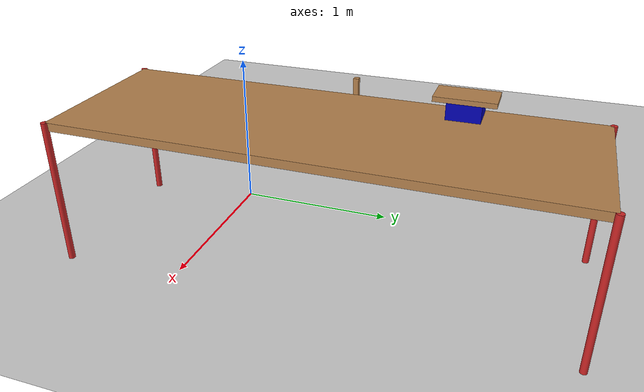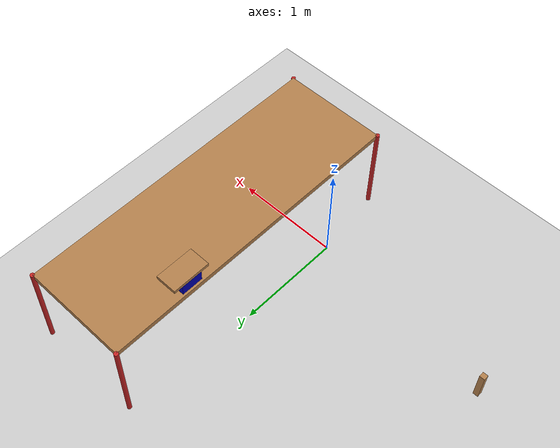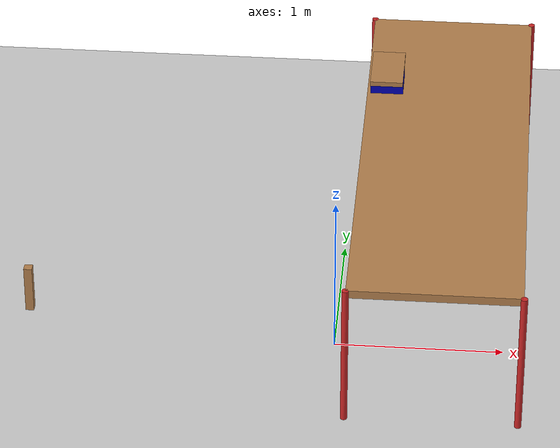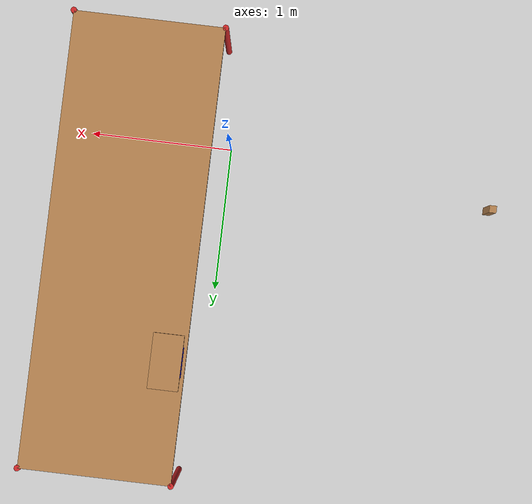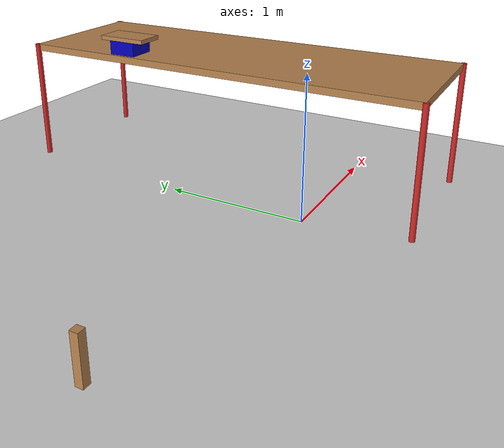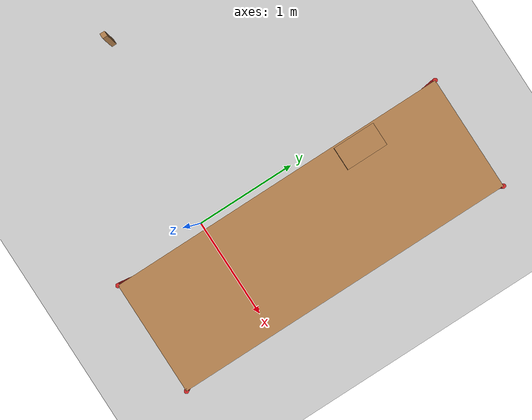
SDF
<sdf version="1.6">
 <world name="default">
  <light name="sun" type="directional">
   <pose>0 0 10 0 -0 0</pose>
   <diffuse>0.8 0.8 0.8 1</diffuse>
   <specular>0.1 0.1 0.1 1</specular>
   <attenuation>
    <range>1000</range>
    <constant>0.9</constant>
    <linear>0.01</linear>
    <quadratic>0.001</quadratic>
   </attenuation>
   <direction>-0.5 0.5 -1</direction>
  </light>
  <model name="ground_plane">
   <static>1</static>
   <link name="link">
    <collision name="collision">
     <geometry><plane><normal>0 0 1</normal><size>100 100</size></plane></geometry>
     <surface><friction><ode><mu>100</mu><mu2>50</mu2></ode></friction></surface>
    </collision>
    <visual name="visual">
     <cast_shadows>0</cast_shadows>
     <geometry><plane><normal>0 0 1</normal><size>100 100</size></plane></geometry>
     <material>
      <script><uri>file://media/materials/scripts/gazebo.material</uri><name>Gazebo/Grey</name></script>
     </material>
    </visual>
   </link>
  </model>
  <gravity>0 0 -9.8</gravity>
  <magnetic_field>6e-06 2.3e-05 -4.2e-05</magnetic_field>
  <atmosphere type="adiabatic"/>
  <physics name="default_physics" default="0" type="ode">
   <max_step_size>0.001</max_step_size>
   <real_time_factor>1</real_time_factor>
   <real_time_update_rate>1000</real_time_update_rate>
  </physics>
  <scene><ambient>0.4 0.4 0.4 1</ambient><background>0.7 0.7 0.7 1</background><shadows>1</shadows></scene>
  <spherical_coordinates>
   <surface_model>EARTH_WGS84</surface_model>
   <latitude_deg>0</latitude_deg>
   <longitude_deg>0</longitude_deg>
   <elevation>0</elevation>
   <heading_deg>0</heading_deg>
  </spherical_coordinates>
  <model name="table_model">
   <link name="table_top_link">
    <inertial>
     <pose>0.8 0 0.535 0 -0 0</pose>
     <mass>50</mass>
     <inertia><ixx>92.845</ixx><ixy>0</ixy><ixz>0</ixz><iyy>12.845</iyy><iyz>0</iyz><izz>101.04</izz></inertia>
    </inertial>
    <collision name="table_top_link_collision">
     <pose>0.8 0 0.875 0 -0 0</pose>
     <geometry><box><size>1 3 0.05</size></box></geometry>
     <surface>
      <contact><ode><kp>1e+06</kp><kd>1</kd></ode></contact>
      <friction><ode><mu>50</mu><mu2>50</mu2></ode></friction>
     </surface>
    </collision>
    <collision name="table_top_link_fixed_joint_lump__leg1_link_collision_1">
     <pose>1.3 1.5 0.45 0 -0 0</pose>
     <geometry><cylinder><length>0.9</length><radius>0.02</radius></cylinder></geometry>
     <surface>
      <contact><ode><kp>1e+07</kp><kd>1</kd></ode></contact>
      <friction><ode><mu>1000</mu><mu2>1000</mu2></ode></friction>
     </surface>
    </collision>
    <collision name="table_top_link_fixed_joint_lump__leg2_link_collision_2">
     <pose>0.3 1.5 0.45 0 -0 0</pose>
     <geometry><cylinder><length>0.9</length><radius>0.02</radius></cylinder></geometry>
     <surface>
      <contact><ode><kp>1e+07</kp><kd>1</kd></ode></contact>
      <friction><ode><mu>1000</mu><mu2>1000</mu2></ode></friction>
     </surface>
    </collision>
    <collision name="table_top_link_fixed_joint_lump__leg3_link_collision_3">
     <pose>1.3 -1.5 0.45 0 -0 0</pose>
     <geometry><cylinder><length>0.9</length><radius>0.02</radius></cylinder></geometry>
     <surface>
      <contact><ode><kp>1e+07</kp><kd>1</kd></ode></contact>
      <friction><ode><mu>1000</mu><mu2>1000</mu2></ode></friction>
     </surface>
    </collision>
    <collision name="table_top_link_fixed_joint_lump__leg4_link_collision_4">
     <pose>0.3 -1.5 0.45 0 -0 0</pose>
     <geometry><cylinder><length>0.9</length><radius>0.02</radius></cylinder></geometry>
     <surface>
      <contact><ode><kp>1e+07</kp><kd>1</kd></ode></contact>
      <friction><ode><mu>1000</mu><mu2>1000</mu2></ode></friction>
     </surface>
    </collision>
    <visual name="table_top_link_visual">
     <pose>0.8 0 0.875 0 -0 0</pose>
     <geometry><box><size>1 3 0.05</size></box></geometry>
     <material>
      <script><name>Gazebo/Wood</name><uri>file://media/materials/scripts/gazebo.material</uri></script>
     </material>
    </visual>
    <visual name="table_top_link_fixed_joint_lump__leg1_link_visual_1">
     <pose>1.3 1.5 0.45 0 -0 0</pose>
     <geometry><cylinder><length>0.9</length><radius>0.02</radius></cylinder></geometry>
     <material>
      <script><name>Gazebo/Red</name><uri>file://media/materials/scripts/gazebo.material</uri></script>
     </material>
    </visual>
    <visual name="table_top_link_fixed_joint_lump__leg2_link_visual_2">
     <pose>0.3 1.5 0.45 0 -0 0</pose>
     <geometry><cylinder><length>0.9</length><radius>0.02</radius></cylinder></geometry>
     <material>
      <script><name>Gazebo/Red</name><uri>file://media/materials/scripts/gazebo.material</uri></script>
     </material>
    </visual>
    <visual name="table_top_link_fixed_joint_lump__leg3_link_visual_3">
     <pose>1.3 -1.5 0.45 0 -0 0</pose>
     <geometry><cylinder><length>0.9</length><radius>0.02</radius></cylinder></geometry>
     <material>
      <script><name>Gazebo/Red</name><uri>file://media/materials/scripts/gazebo.material</uri></script>
     </material>
    </visual>
    <visual name="table_top_link_fixed_joint_lump__leg4_link_visual_4">
     <pose>0.3 -1.5 0.45 0 -0 0</pose>
     <geometry><cylinder><length>0.9</length><radius>0.02</radius></cylinder></geometry>
     <material>
      <script><name>Gazebo/Red</name><uri>file://media/materials/scripts/gazebo.material</uri></script>
     </material>
    </visual>
    <self_collide>1</self_collide>
   </link>
   <static>1</static>
   <pose>-0.2 0.8 0 0 -0 0</pose>
  </model>
  <model name="box1">
   <link name="link">
    <inertial>
     <mass>0.3</mass>
     <inertia><ixx>0.066667</ixx><ixy>0</ixy><ixz>0</ixz><iyy>0.136667</iyy><iyz>0</iyz><izz>0.21</izz></inertia>
    </inertial>
    <visual name="visual">
     <geometry><box><size>0.05 0.05 0.3</size></box></geometry>
     <material>
      <script><name>Gazebo/Wood</name><uri>file://media/materials/scripts/gazebo.material</uri></script>
      <ambient>0.3 0.3 0.3 1</ambient>
      <diffuse>0.7 0.7 0.7 1</diffuse>
      <specular>0.01 0.01 0.01 1</specular>
      <emissive>0.7 0.5 0 1</emissive>
      <shader type="vertex"><normal_map>__default__</normal_map></shader>
     </material>
    </visual>
    <collision name="collision">
     <geometry><box><size>0.05 0.05 0.3</size></box></geometry>
     <surface>
      <friction>
       <ode><mu>1</mu><mu2>1</mu2><fdir1>0 0 0</fdir1><slip1>0</slip1><slip2>0</slip2></ode>
       <torsional>
        <coefficient>1</coefficient>
        <patch_radius>0</patch_radius>
        <surface_radius>0</surface_radius>
        <use_patch_radius>1</use_patch_radius>
        <ode><slip>0</slip></ode>
       </torsional>
      </friction>
      <bounce><restitution_coefficient>0</restitution_coefficient><threshold>1e+06</threshold></bounce>
      <contact>
       <collide_without_contact>0</collide_without_contact>
       <collide_without_contact_bitmask>1</collide_without_contact_bitmask>
       <collide_bitmask>1</collide_bitmask>
       <ode>
        <soft_cfm>0</soft_cfm>
        <soft_erp>0.2</soft_erp>
        <kp>1e+13</kp>
        <kd>1</kd>
        <max_vel>0.01</max_vel>
        <min_depth>0</min_depth>
       </ode>
       <bullet>
        <split_impulse>1</split_impulse>
        <split_impulse_penetration_threshold>-0.01</split_impulse_penetration_threshold>
        <soft_cfm>0</soft_cfm>
        <soft_erp>0.2</soft_erp>
        <kp>1e+13</kp>
        <kd>1</kd>
       </bullet>
      </contact>
     </surface>
    </collision>
   </link>
   <static>0</static>
   <pose>-1.86011 0.22333 0.15 -5e-06 3e-06 -0.000295</pose>
  </model>
  <model name="box2_0_0">
   <link name="link">
    <inertial>
     <mass>2</mass>
     <inertia>
      <ixx>0.0166667</ixx>
      <ixy>0</ixy>
      <ixz>0</ixz>
      <iyy>0.0166667</iyy>
      <iyz>0</iyz>
      <izz>0.0166667</izz>
     </inertia>
    </inertial>
    <visual name="visual">
     <geometry><box><size>0.2 0.2 0.1</size></box></geometry>
     <material>
      <script><name>Gazebo/Grey</name><uri>file://media/materials/scripts/gazebo.material</uri></script>
      <ambient>0.3 0.3 0.9 1</ambient>
      <diffuse>0 0 0.7 1</diffuse>
      <specular>0.01 0.01 0.8 1</specular>
      <emissive>0 0 0.5 1</emissive>
      <shader type="vertex"><normal_map>__default__</normal_map></shader>
     </material>
    </visual>
    <collision name="collision">
     <geometry><box><size>0.2 0.2 0.1</size></box></geometry>
     <surface>
      <friction>
       <ode><mu>1</mu><mu2>1</mu2><fdir1>0 0 0</fdir1><slip1>0</slip1><slip2>0</slip2></ode>
       <torsional>
        <coefficient>1</coefficient>
        <patch_radius>0</patch_radius>
        <surface_radius>0</surface_radius>
        <use_patch_radius>1</use_patch_radius>
        <ode><slip>0</slip></ode>
       </torsional>
      </friction>
      <bounce><restitution_coefficient>0</restitution_coefficient><threshold>1e+06</threshold></bounce>
      <contact>
       <collide_without_contact>0</collide_without_contact>
       <collide_without_contact_bitmask>1</collide_without_contact_bitmask>
       <collide_bitmask>1</collide_bitmask>
       <ode>
        <soft_cfm>0</soft_cfm>
        <soft_erp>0.2</soft_erp>
        <kp>1e+13</kp>
        <kd>1</kd>
        <max_vel>0.01</max_vel>
        <min_depth>0</min_depth>
       </ode>
       <bullet>
        <split_impulse>1</split_impulse>
        <split_impulse_penetration_threshold>-0.01</split_impulse_penetration_threshold>
        <soft_cfm>0</soft_cfm>
        <soft_erp>0.2</soft_erp>
        <kp>1e+13</kp>
        <kd>1</kd>
       </bullet>
      </contact>
     </surface>
    </collision>
   </link>
   <static>0</static>
   <pose>0.220064 1.50008 0.949982 1e-06 -0 0.001382</pose>
  </model>
  <model name="box5_0_0">
   <link name="link">
    <inertial>
     <mass>0.5</mass>
     <inertia><ixx>0.0836667</ixx><ixy>0</ixy><ixz>0</ixz><iyy>0.063</iyy><iyz>0</iyz><izz>0.82</izz></inertia>
    </inertial>
    <visual name="visual">
     <geometry><box><size>0.2 0.36 0.03</size></box></geometry>
     <material>
      <script><name>Gazebo/Wood</name><uri>file://media/materials/scripts/gazebo.material</uri></script>
      <ambient>0.3 0.3 0.3 1</ambient>
      <diffuse>0.7 0.7 0.7 1</diffuse>
      <specular>0.01 0.01 0.01 1</specular>
      <emissive>0.7 0.5 0 1</emissive>
      <shader type="vertex"><normal_map>__default__</normal_map></shader>
     </material>
    </visual>
    <collision name="collision">
     <geometry><box><size>0.2 0.36 0.03</size></box></geometry>
     <surface>
      <friction>
       <ode><mu>1</mu><mu2>1</mu2><fdir1>0 0 0</fdir1><slip1>0</slip1><slip2>0</slip2></ode>
       <torsional>
        <coefficient>1</coefficient>
        <patch_radius>0</patch_radius>
        <surface_radius>0</surface_radius>
        <use_patch_radius>1</use_patch_radius>
        <ode><slip>0</slip></ode>
       </torsional>
      </friction>
      <bounce><restitution_coefficient>0</restitution_coefficient><threshold>1e+06</threshold></bounce>
      <contact>
       <collide_without_contact>0</collide_without_contact>
       <collide_without_contact_bitmask>1</collide_without_contact_bitmask>
       <collide_bitmask>1</collide_bitmask>
       <ode>
        <soft_cfm>0</soft_cfm>
        <soft_erp>0.2</soft_erp>
        <kp>1e+13</kp>
        <kd>1</kd>
        <max_vel>0.01</max_vel>
        <min_depth>0</min_depth>
       </ode>
       <bullet>
        <split_impulse>1</split_impulse>
        <split_impulse_penetration_threshold>-0.01</split_impulse_penetration_threshold>
        <soft_cfm>0</soft_cfm>
        <soft_erp>0.2</soft_erp>
        <kp>1e+13</kp>
        <kd>1</kd>
       </bullet>
      </contact>
     </surface>
    </collision>
   </link>
   <static>0</static>
   <pose>0.220016 1.50001 1.01498 1e-06 0 -0.000124</pose>
  </model>
 </world>
</sdf>
